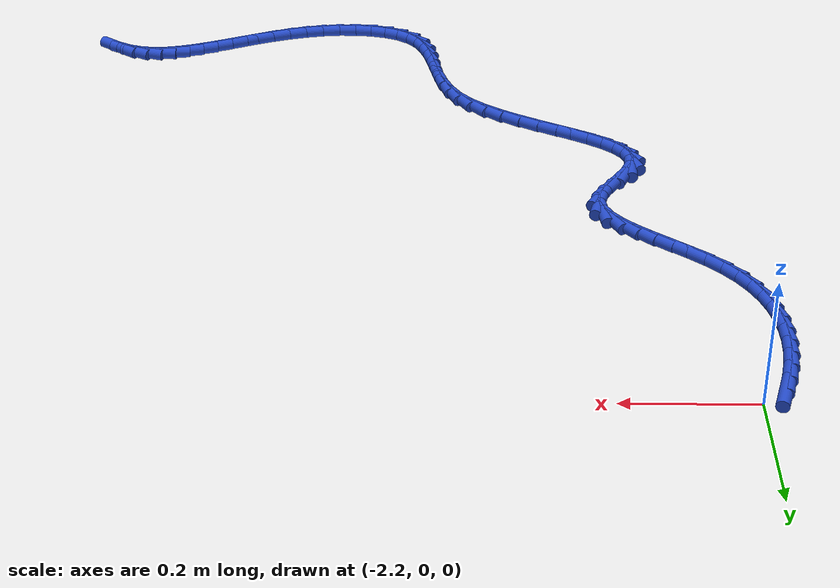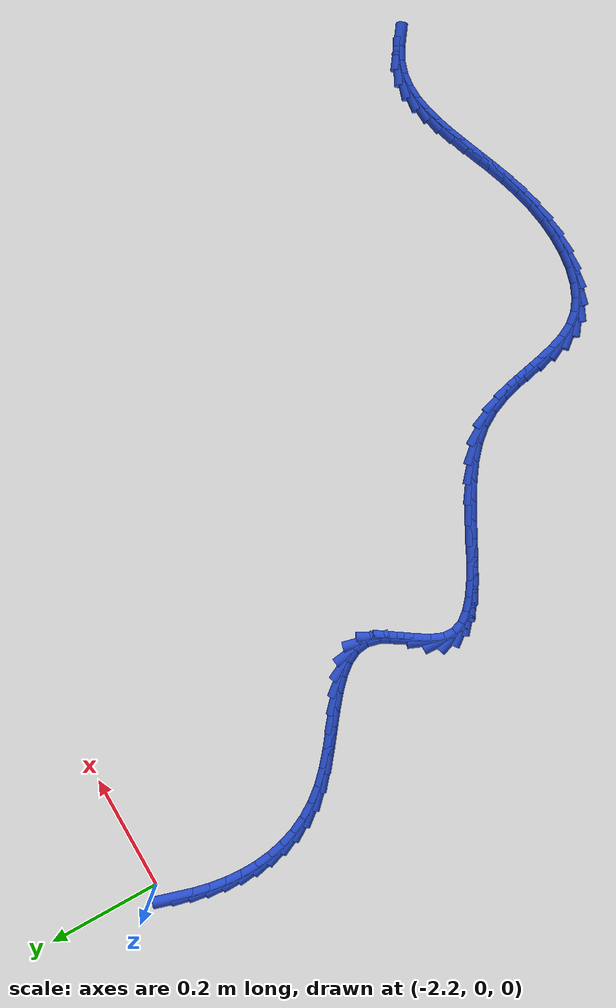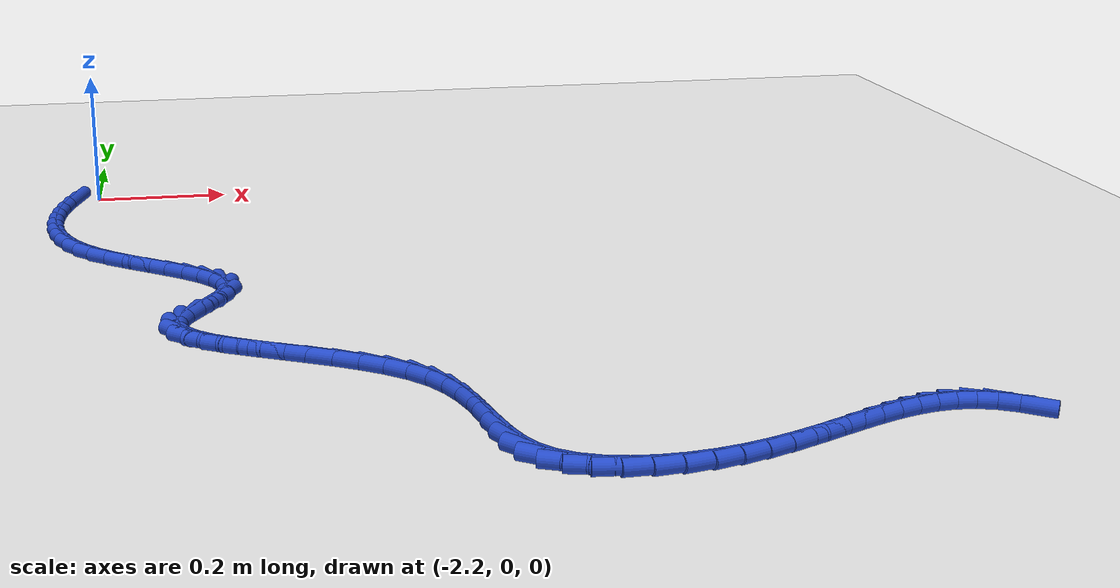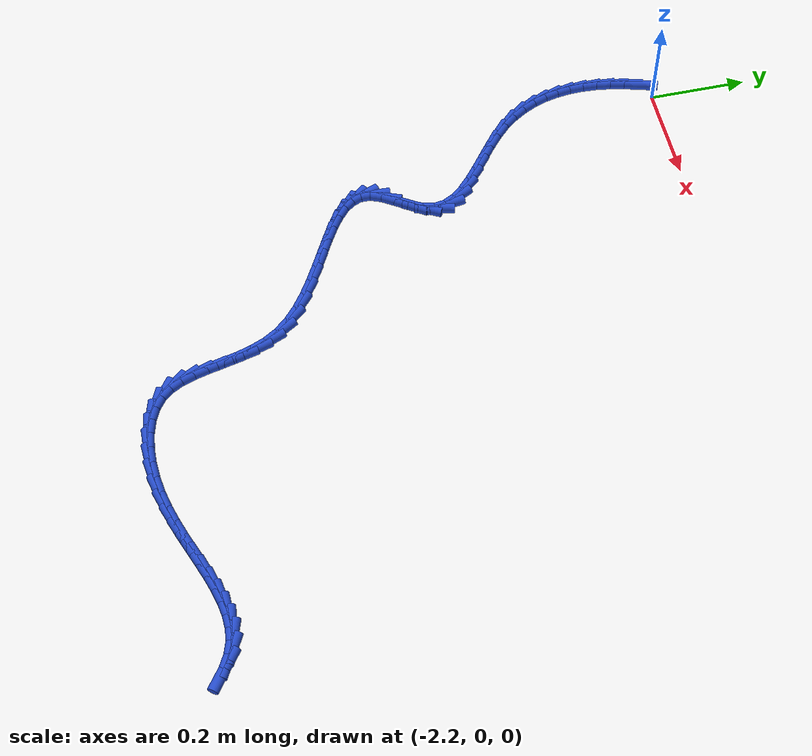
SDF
<sdf version="1.6">
 <world name="default">
  <model name="ground_plane">
   <static>1</static>
   <link name="link">
    <collision name="collision">
     <geometry><plane><normal>0 0 1</normal><size>100 100</size></plane></geometry>
     <surface><friction><ode><mu>100</mu><mu2>50</mu2></ode></friction></surface>
    </collision>
    <visual name="visual">
     <cast_shadows>0</cast_shadows>
     <geometry><plane><normal>0 0 1</normal><size>100 100</size></plane></geometry>
     <material>
      <script><uri>file://media/materials/scripts/gazebo.material</uri><name>Gazebo/WhiteGlow</name></script>
     </material>
    </visual>
   </link>
  </model>
  <model name="line">
   <link name="link_134">
    <pose>-2.2333010467924863 -0.021200513543005825 0.01 0 1.57 1.2876611017947563</pose>
    <collision name="collision">
     <geometry><cylinder><radius>0.01</radius><length>0.08</length></cylinder></geometry>
    </collision>
    <visual name="visual">
     <material>
      <script><name>Gazebo/Blue</name><uri>file://media/materials/scripts/gazebo.material</uri></script>
     </material>
     <geometry><cylinder><radius>0.01</radius><length>0.08</length></cylinder></geometry>
    </visual>
   </link>
   <link name="link_135">
    <pose>-2.241758559506203 -0.05026893901276465 0.01 0 1.57 1.3547154472637721</pose>
    <collision name="collision">
     <geometry><cylinder><radius>0.01</radius><length>0.08</length></cylinder></geometry>
    </collision>
    <visual name="visual">
     <material>
      <script><name>Gazebo/Blue</name><uri>file://media/materials/scripts/gazebo.material</uri></script>
     </material>
     <geometry><cylinder><radius>0.01</radius><length>0.08</length></cylinder></geometry>
    </visual>
   </link>
   <link name="link_136">
    <pose>-2.2481508836966944 -0.07939009611272597 0.01 0 1.57 1.4280907364871451</pose>
    <collision name="collision">
     <geometry><cylinder><radius>0.01</radius><length>0.08</length></cylinder></geometry>
    </collision>
    <visual name="visual">
     <material>
      <script><name>Gazebo/Blue</name><uri>file://media/materials/scripts/gazebo.material</uri></script>
     </material>
     <geometry><cylinder><radius>0.01</radius><length>0.08</length></cylinder></geometry>
    </visual>
   </link>
   <link name="link_137">
    <pose>-2.2523227476389778 -0.10842543779828677 0.01 0 1.57 1.5085349760921503</pose>
    <collision name="collision">
     <geometry><cylinder><radius>0.01</radius><length>0.08</length></cylinder></geometry>
    </collision>
    <visual name="visual">
     <material>
      <script><name>Gazebo/Blue</name><uri>file://media/materials/scripts/gazebo.material</uri></script>
     </material>
     <geometry><cylinder><radius>0.01</radius><length>0.08</length></cylinder></geometry>
    </visual>
   </link>
   <link name="link_138">
    <pose>-2.25411887960807 -0.13723641702484676 0.01 0 1.57 -1.5449700284535788</pose>
    <collision name="collision">
     <geometry><cylinder><radius>0.01</radius><length>0.08</length></cylinder></geometry>
    </collision>
    <visual name="visual">
     <material>
      <script><name>Gazebo/Blue</name><uri>file://media/materials/scripts/gazebo.material</uri></script>
     </material>
     <geometry><cylinder><radius>0.01</radius><length>0.08</length></cylinder></geometry>
    </visual>
   </link>
   <link name="link_139">
    <pose>-2.2533840078789904 -0.1656844867478025 0.01 0 1.57 -1.448985164145226</pose>
    <collision name="collision">
     <geometry><cylinder><radius>0.01</radius><length>0.08</length></cylinder></geometry>
    </collision>
    <visual name="visual">
     <material>
      <script><name>Gazebo/Blue</name><uri>file://media/materials/scripts/gazebo.material</uri></script>
     </material>
     <geometry><cylinder><radius>0.01</radius><length>0.08</length></cylinder></geometry>
    </visual>
   </link>
   <link name="link_140">
    <pose>-2.2499628607267557 -0.19363109992255306 0.01 0 1.57 -1.3453480342210302</pose>
    <collision name="collision">
     <geometry><cylinder><radius>0.01</radius><length>0.08</length></cylinder></geometry>
    </collision>
    <visual name="visual">
     <material>
      <script><name>Gazebo/Blue</name><uri>file://media/materials/scripts/gazebo.material</uri></script>
     </material>
     <geometry><cylinder><radius>0.01</radius><length>0.08</length></cylinder></geometry>
    </visual>
   </link>
   <link name="link_141">
    <pose>-2.2437001664263834 -0.22093770950449726 0.01 0 1.57 -1.2349716382738567</pose>
    <collision name="collision">
     <geometry><cylinder><radius>0.01</radius><length>0.08</length></cylinder></geometry>
    </collision>
    <visual name="visual">
     <material>
      <script><name>Gazebo/Blue</name><uri>file://media/materials/scripts/gazebo.material</uri></script>
     </material>
     <geometry><cylinder><radius>0.01</radius><length>0.08</length></cylinder></geometry>
    </visual>
   </link>
   <link name="link_142">
    <pose>-2.234440653252891 -0.2474657684490317 0.01 0 1.57 -1.119527624433542</pose>
    <collision name="collision">
     <geometry><cylinder><radius>0.01</radius><length>0.08</length></cylinder></geometry>
    </collision>
    <visual name="visual">
     <material>
      <script><name>Gazebo/Blue</name><uri>file://media/materials/scripts/gazebo.material</uri></script>
     </material>
     <geometry><cylinder><radius>0.01</radius><length>0.08</length></cylinder></geometry>
    </visual>
   </link>
   <link name="link_143">
    <pose>-2.2220290494812964 -0.2730767297115561 0.01 0 1.57 -1.0013801900100083</pose>
    <collision name="collision">
     <geometry><cylinder><radius>0.01</radius><length>0.08</length></cylinder></geometry>
    </collision>
    <visual name="visual">
     <material>
      <script><name>Gazebo/Blue</name><uri>file://media/materials/scripts/gazebo.material</uri></script>
     </material>
     <geometry><cylinder><radius>0.01</radius><length>0.08</length></cylinder></geometry>
    </visual>
   </link>
   <link name="link_144">
    <pose>-2.206310083386618 -0.29763204624746714 0.01 0 1.57 -0.883326903998448</pose>
    <collision name="collision">
     <geometry><cylinder><radius>0.01</radius><length>0.08</length></cylinder></geometry>
    </collision>
    <visual name="visual">
     <material>
      <script><name>Gazebo/Blue</name><uri>file://media/materials/scripts/gazebo.material</uri></script>
     </material>
     <geometry><cylinder><radius>0.01</radius><length>0.08</length></cylinder></geometry>
    </visual>
   </link>
   <link name="link_145">
    <pose>-2.187128483243872 -0.3209931710121645 0.01 0 1.57 -0.7724691279451963</pose>
    <collision name="collision">
     <geometry><cylinder><radius>0.01</radius><length>0.08</length></cylinder></geometry>
    </collision>
    <visual name="visual">
     <material>
      <script><name>Gazebo/Blue</name><uri>file://media/materials/scripts/gazebo.material</uri></script>
     </material>
     <geometry><cylinder><radius>0.01</radius><length>0.08</length></cylinder></geometry>
    </visual>
   </link>
   <link name="link_146">
    <pose>-2.164479134887181 -0.3430642945828293 0.01 0 1.57 -0.6955905774156843</pose>
    <collision name="collision">
     <geometry><cylinder><radius>0.01</radius><length>0.08</length></cylinder></geometry>
    </collision>
    <visual name="visual">
     <material>
      <script><name>Gazebo/Blue</name><uri>file://media/materials/scripts/gazebo.material</uri></script>
     </material>
     <geometry><cylinder><radius>0.01</radius><length>0.08</length></cylinder></geometry>
    </visual>
   </link>
   <link name="link_147">
    <pose>-2.1393583095922493 -0.36403462037594714 0.01 0 1.57 -0.6564622899365692</pose>
    <collision name="collision">
     <geometry><cylinder><radius>0.01</radius><length>0.08</length></cylinder></geometry>
    </collision>
    <visual name="visual">
     <material>
      <script><name>Gazebo/Blue</name><uri>file://media/materials/scripts/gazebo.material</uri></script>
     </material>
     <geometry><cylinder><radius>0.01</radius><length>0.08</length></cylinder></geometry>
    </visual>
   </link>
   <link name="link_148">
    <pose>-2.1131719465932868 -0.38420995089480225 0.01 0 1.57 -0.6509606968045747</pose>
    <collision name="collision">
     <geometry><cylinder><radius>0.01</radius><length>0.08</length></cylinder></geometry>
    </collision>
    <visual name="visual">
     <material>
      <script><name>Gazebo/Blue</name><uri>file://media/materials/scripts/gazebo.material</uri></script>
     </material>
     <geometry><cylinder><radius>0.01</radius><length>0.08</length></cylinder></geometry>
    </visual>
   </link>
   <link name="link_149">
    <pose>-2.0873272124886473 -0.4038964379732437 0.01 0 1.57 -0.6804600346426491</pose>
    <collision name="collision">
     <geometry><cylinder><radius>0.01</radius><length>0.08</length></cylinder></geometry>
    </collision>
    <visual name="visual">
     <material>
      <script><name>Gazebo/Blue</name><uri>file://media/materials/scripts/gazebo.material</uri></script>
     </material>
     <geometry><cylinder><radius>0.01</radius><length>0.08</length></cylinder></geometry>
    </visual>
   </link>
   <link name="link_150">
    <pose>-2.0632312738766867 -0.42340023344511846 0.01 0 1.57 -0.7530503090300141</pose>
    <collision name="collision">
     <geometry><cylinder><radius>0.01</radius><length>0.08</length></cylinder></geometry>
    </collision>
    <visual name="visual">
     <material>
      <script><name>Gazebo/Blue</name><uri>file://media/materials/scripts/gazebo.material</uri></script>
     </material>
     <geometry><cylinder><radius>0.01</radius><length>0.08</length></cylinder></geometry>
    </visual>
   </link>
   <link name="link_151">
    <pose>-2.0422912973557588 -0.44302748914427514 0.01 0 1.57 -0.8860626486881282</pose>
    <collision name="collision">
     <geometry><cylinder><radius>0.01</radius><length>0.08</length></cylinder></geometry>
    </collision>
    <visual name="visual">
     <material>
      <script><name>Gazebo/Blue</name><uri>file://media/materials/scripts/gazebo.material</uri></script>
     </material>
     <geometry><cylinder><radius>0.01</radius><length>0.08</length></cylinder></geometry>
    </visual>
   </link>
   <link name="link_152">
    <pose>-2.025914449524218 -0.4630843569045626 0.01 0 1.57 -1.106754935985622</pose>
    <collision name="collision">
     <geometry><cylinder><radius>0.01</radius><length>0.08</length></cylinder></geometry>
    </collision>
    <visual name="visual">
     <material>
      <script><name>Gazebo/Blue</name><uri>file://media/materials/scripts/gazebo.material</uri></script>
     </material>
     <geometry><cylinder><radius>0.01</radius><length>0.08</length></cylinder></geometry>
    </visual>
   </link>
   <link name="link_153">
    <pose>-2.01550789698042 -0.48387698855982764 0.01 0 1.57 -1.4329469118991998</pose>
    <collision name="collision">
     <geometry><cylinder><radius>0.01</radius><length>0.08</length></cylinder></geometry>
    </collision>
    <visual name="visual">
     <material>
      <script><name>Gazebo/Blue</name><uri>file://media/materials/scripts/gazebo.material</uri></script>
     </material>
     <geometry><cylinder><radius>0.01</radius><length>0.08</length></cylinder></geometry>
    </visual>
   </link>
   <link name="link_154">
    <pose>-2.012478806322719 -0.5057115359439195 0.01 0 1.57 1.3303568811636042</pose>
    <collision name="collision">
     <geometry><cylinder><radius>0.01</radius><length>0.08</length></cylinder></geometry>
    </collision>
    <visual name="visual">
     <material>
      <script><name>Gazebo/Blue</name><uri>file://media/materials/scripts/gazebo.material</uri></script>
     </material>
     <geometry><cylinder><radius>0.01</radius><length>0.08</length></cylinder></geometry>
    </visual>
   </link>
   <link name="link_155">
    <pose>-2.0181589845004253 -0.5288786780725527 0.01 0 1.57 1.073680397625172</pose>
    <collision name="collision">
     <geometry><cylinder><radius>0.01</radius><length>0.08</length></cylinder></geometry>
    </collision>
    <visual name="visual">
     <material>
      <script><name>Gazebo/Blue</name><uri>file://media/materials/scripts/gazebo.material</uri></script>
     </material>
     <geometry><cylinder><radius>0.01</radius><length>0.08</length></cylinder></geometry>
    </visual>
   </link>
   <link name="link_156">
    <pose>-2.0313246734668295 -0.5531443862045715 0.01 0 1.57 0.9832884168162731</pose>
    <collision name="collision">
     <geometry><cylinder><radius>0.01</radius><length>0.08</length></cylinder></geometry>
    </collision>
    <visual name="visual">
     <material>
      <script><name>Gazebo/Blue</name><uri>file://media/materials/scripts/gazebo.material</uri></script>
     </material>
     <geometry><cylinder><radius>0.01</radius><length>0.08</length></cylinder></geometry>
    </visual>
   </link>
   <link name="link_157">
    <pose>-2.0476338490776773 -0.5776343902385217 0.01 0 1.57 1.0108201186510835</pose>
    <collision name="collision">
     <geometry><cylinder><radius>0.01</radius><length>0.08</length></cylinder></geometry>
    </collision>
    <visual name="visual">
     <material>
      <script><name>Gazebo/Blue</name><uri>file://media/materials/scripts/gazebo.material</uri></script>
     </material>
     <geometry><cylinder><radius>0.01</radius><length>0.08</length></cylinder></geometry>
    </visual>
   </link>
   <link name="link_158">
    <pose>-2.0625551883462605 -0.6014355532974411 0.01 0 1.57 1.1845032348227698</pose>
    <collision name="collision">
     <geometry><cylinder><radius>0.01</radius><length>0.08</length></cylinder></geometry>
    </collision>
    <visual name="visual">
     <material>
      <script><name>Gazebo/Blue</name><uri>file://media/materials/scripts/gazebo.material</uri></script>
     </material>
     <geometry><cylinder><radius>0.01</radius><length>0.08</length></cylinder></geometry>
    </visual>
   </link>
   <link name="link_159">
    <pose>-2.071586961240989 -0.6236414688173467 0.01 0 1.57 1.5384990069696682</pose>
    <collision name="collision">
     <geometry><cylinder><radius>0.01</radius><length>0.08</length></cylinder></geometry>
    </collision>
    <visual name="visual">
     <material>
      <script><name>Gazebo/Blue</name><uri>file://media/materials/scripts/gazebo.material</uri></script>
     </material>
     <geometry><cylinder><radius>0.01</radius><length>0.08</length></cylinder></geometry>
    </visual>
   </link>
   <link name="link_160">
    <pose>-2.0722383534936157 -0.6438030719364153 0.01 0 1.57 -1.2093703985232973</pose>
    <collision name="collision">
     <geometry><cylinder><radius>0.01</radius><length>0.08</length></cylinder></geometry>
    </collision>
    <visual name="visual">
     <material>
      <script><name>Gazebo/Blue</name><uri>file://media/materials/scripts/gazebo.material</uri></script>
     </material>
     <geometry><cylinder><radius>0.01</radius><length>0.08</length></cylinder></geometry>
    </visual>
   </link>
   <link name="link_161">
    <pose>-2.065278894460966 -0.6622127963330889 0.01 0 1.57 -0.9000656160312671</pose>
    <collision name="collision">
     <geometry><cylinder><radius>0.01</radius><length>0.08</length></cylinder></geometry>
    </collision>
    <visual name="visual">
     <material>
      <script><name>Gazebo/Blue</name><uri>file://media/materials/scripts/gazebo.material</uri></script>
     </material>
     <geometry><cylinder><radius>0.01</radius><length>0.08</length></cylinder></geometry>
    </visual>
   </link>
   <link name="link_162">
    <pose>-2.051776032961039 -0.679230831379985 0.01 0 1.57 -0.700027727535812</pose>
    <collision name="collision">
     <geometry><cylinder><radius>0.01</radius><length>0.08</length></cylinder></geometry>
    </collision>
    <visual name="visual">
     <material>
      <script><name>Gazebo/Blue</name><uri>file://media/materials/scripts/gazebo.material</uri></script>
     </material>
     <geometry><cylinder><radius>0.01</radius><length>0.08</length></cylinder></geometry>
    </visual>
   </link>
   <link name="link_163">
    <pose>-2.0327972178118356 -0.6952173664497245 0.01 0 1.57 -0.5797782949481165</pose>
    <collision name="collision">
     <geometry><cylinder><radius>0.01</radius><length>0.08</length></cylinder></geometry>
    </collision>
    <visual name="visual">
     <material>
      <script><name>Gazebo/Blue</name><uri>file://media/materials/scripts/gazebo.material</uri></script>
     </material>
     <geometry><cylinder><radius>0.01</radius><length>0.08</length></cylinder></geometry>
    </visual>
   </link>
   <link name="link_164">
    <pose>-2.009409897831356 -0.710532590914926 0.01 0 1.57 -0.5115191209317548</pose>
    <collision name="collision">
     <geometry><cylinder><radius>0.01</radius><length>0.08</length></cylinder></geometry>
    </collision>
    <visual name="visual">
     <material>
      <script><name>Gazebo/Blue</name><uri>file://media/materials/scripts/gazebo.material</uri></script>
     </material>
     <geometry><cylinder><radius>0.01</radius><length>0.08</length></cylinder></geometry>
    </visual>
   </link>
   <link name="link_165">
    <pose>-1.982681521837598 -0.7255366941482096 0.01 0 1.57 -0.4787628391784567</pose>
    <collision name="collision">
     <geometry><cylinder><radius>0.01</radius><length>0.08</length></cylinder></geometry>
    </collision>
    <visual name="visual">
     <material>
      <script><name>Gazebo/Blue</name><uri>file://media/materials/scripts/gazebo.material</uri></script>
     </material>
     <geometry><cylinder><radius>0.01</radius><length>0.08</length></cylinder></geometry>
    </visual>
   </link>
   <link name="link_166">
    <pose>-1.9536795386485635 -0.7405898655221939 0.01 0 1.57 -0.47309287863700056</pose>
    <collision name="collision">
     <geometry><cylinder><radius>0.01</radius><length>0.08</length></cylinder></geometry>
    </collision>
    <visual name="visual">
     <material>
      <script><name>Gazebo/Blue</name><uri>file://media/materials/scripts/gazebo.material</uri></script>
     </material>
     <geometry><cylinder><radius>0.01</radius><length>0.08</length></cylinder></geometry>
    </visual>
   </link>
   <link name="link_167">
    <pose>-1.9234713970822508 -0.7560522944094993 0.01 0 1.57 -0.4911594763447392</pose>
    <collision name="collision">
     <geometry><cylinder><radius>0.01</radius><length>0.08</length></cylinder></geometry>
    </collision>
    <visual name="visual">
     <material>
      <script><name>Gazebo/Blue</name><uri>file://media/materials/scripts/gazebo.material</uri></script>
     </material>
     <geometry><cylinder><radius>0.01</radius><length>0.08</length></cylinder></geometry>
    </visual>
   </link>
   <link name="link_168">
    <pose>-1.893124545956661 -0.7722841701827439 0.01 0 1.57 -0.533155790951373</pose>
    <collision name="collision">
     <geometry><cylinder><radius>0.01</radius><length>0.08</length></cylinder></geometry>
    </collision>
    <visual name="visual">
     <material>
      <script><name>Gazebo/Blue</name><uri>file://media/materials/scripts/gazebo.material</uri></script>
     </material>
     <geometry><cylinder><radius>0.01</radius><length>0.08</length></cylinder></geometry>
    </visual>
   </link>
   <link name="link_169">
    <pose>-1.8637064340897922 -0.7896456822145481 0.01 0 1.57 -0.6022567647852997</pose>
    <collision name="collision">
     <geometry><cylinder><radius>0.01</radius><length>0.08</length></cylinder></geometry>
    </collision>
    <visual name="visual">
     <material>
      <script><name>Gazebo/Blue</name><uri>file://media/materials/scripts/gazebo.material</uri></script>
     </material>
     <geometry><cylinder><radius>0.01</radius><length>0.08</length></cylinder></geometry>
    </visual>
   </link>
   <link name="link_170">
    <pose>-1.8362845102996463 -0.8084970198775309 0.01 0 1.57 -0.7044180009083288</pose>
    <collision name="collision">
     <geometry><cylinder><radius>0.01</radius><length>0.08</length></cylinder></geometry>
    </collision>
    <visual name="visual">
     <material>
      <script><name>Gazebo/Blue</name><uri>file://media/materials/scripts/gazebo.material</uri></script>
     </material>
     <geometry><cylinder><radius>0.01</radius><length>0.08</length></cylinder></geometry>
    </visual>
   </link>
   <link name="link_171">
    <pose>-1.811926223404222 -0.8291983725443115 0.01 0 1.57 -0.8475441155079375</pose>
    <collision name="collision">
     <geometry><cylinder><radius>0.01</radius><length>0.08</length></cylinder></geometry>
    </collision>
    <visual name="visual">
     <material>
      <script><name>Gazebo/Blue</name><uri>file://media/materials/scripts/gazebo.material</uri></script>
     </material>
     <geometry><cylinder><radius>0.01</radius><length>0.08</length></cylinder></geometry>
    </visual>
   </link>
   <link name="link_172">
    <pose>-1.7916990222215183 -0.8521099295875105 0.01 0 1.57 -1.0252533397626606</pose>
    <collision name="collision">
     <geometry><cylinder><radius>0.01</radius><length>0.08</length></cylinder></geometry>
    </collision>
    <visual name="visual">
     <material>
      <script><name>Gazebo/Blue</name><uri>file://media/materials/scripts/gazebo.material</uri></script>
     </material>
     <geometry><cylinder><radius>0.01</radius><length>0.08</length></cylinder></geometry>
    </visual>
   </link>
   <link name="link_173">
    <pose>-1.7763356216051185 -0.8774207477852843 0.01 0 1.57 -1.177505290112843</pose>
    <collision name="collision">
     <geometry><cylinder><radius>0.01</radius><length>0.08</length></cylinder></geometry>
    </collision>
    <visual name="visual">
     <material>
      <script><name>Gazebo/Blue</name><uri>file://media/materials/scripts/gazebo.material</uri></script>
     </material>
     <geometry><cylinder><radius>0.01</radius><length>0.08</length></cylinder></geometry>
    </visual>
   </link>
   <link name="link_174">
    <pose>-1.7650765846749181 -0.9045570219876362 0.01 0 1.57 -1.283345946575304</pose>
    <collision name="collision">
     <geometry><cylinder><radius>0.01</radius><length>0.08</length></cylinder></geometry>
    </collision>
    <visual name="visual">
     <material>
      <script><name>Gazebo/Blue</name><uri>file://media/materials/scripts/gazebo.material</uri></script>
     </material>
     <geometry><cylinder><radius>0.01</radius><length>0.08</length></cylinder></geometry>
    </visual>
   </link>
   <link name="link_175">
    <pose>-1.7567468485774853 -0.9327324584455531 0.01 0 1.57 -1.343491907849067</pose>
    <collision name="collision">
     <geometry><cylinder><radius>0.01</radius><length>0.08</length></cylinder></geometry>
    </collision>
    <visual name="visual">
     <material>
      <script><name>Gazebo/Blue</name><uri>file://media/materials/scripts/gazebo.material</uri></script>
     </material>
     <geometry><cylinder><radius>0.01</radius><length>0.08</length></cylinder></geometry>
    </visual>
   </link>
   <link name="link_176">
    <pose>-1.7501713328941089 -0.9611607544297845 0.01 0 1.57 -1.3590550371621462</pose>
    <collision name="collision">
     <geometry><cylinder><radius>0.01</radius><length>0.08</length></cylinder></geometry>
    </collision>
    <visual name="visual">
     <material>
      <script><name>Gazebo/Blue</name><uri>file://media/materials/scripts/gazebo.material</uri></script>
     </material>
     <geometry><cylinder><radius>0.01</radius><length>0.08</length></cylinder></geometry>
    </visual>
   </link>
   <link name="link_177">
    <pose>-1.744174957206078 -0.989055607211076 0.01 0 1.57 -1.327641006506567</pose>
    <collision name="collision">
     <geometry><cylinder><radius>0.01</radius><length>0.08</length></cylinder></geometry>
    </collision>
    <visual name="visual">
     <material>
      <script><name>Gazebo/Blue</name><uri>file://media/materials/scripts/gazebo.material</uri></script>
     </material>
     <geometry><cylinder><radius>0.01</radius><length>0.08</length></cylinder></geometry>
    </visual>
   </link>
   <link name="link_178">
    <pose>-1.7375826410946806 -1.0156307140601764 0.01 0 1.57 -1.241452072351488</pose>
    <collision name="collision">
     <geometry><cylinder><radius>0.01</radius><length>0.08</length></cylinder></geometry>
    </collision>
    <visual name="visual">
     <material>
      <script><name>Gazebo/Blue</name><uri>file://media/materials/scripts/gazebo.material</uri></script>
     </material>
     <geometry><cylinder><radius>0.01</radius><length>0.08</length></cylinder></geometry>
    </visual>
   </link>
   <link name="link_179">
    <pose>-1.729219304141206 -1.0400997722478313 0.01 0 1.57 -1.0880156312383686</pose>
    <collision name="collision">
     <geometry><cylinder><radius>0.01</radius><length>0.08</length></cylinder></geometry>
    </collision>
    <visual name="visual">
     <material>
      <script><name>Gazebo/Blue</name><uri>file://media/materials/scripts/gazebo.material</uri></script>
     </material>
     <geometry><cylinder><radius>0.01</radius><length>0.08</length></cylinder></geometry>
    </visual>
   </link>
   <link name="link_180">
    <pose>-1.7179098659269416 -1.0616764790447895 0.01 0 1.57 -0.8597965756190754</pose>
    <collision name="collision">
     <geometry><cylinder><radius>0.01</radius><length>0.08</length></cylinder></geometry>
    </collision>
    <visual name="visual">
     <material>
      <script><name>Gazebo/Blue</name><uri>file://media/materials/scripts/gazebo.material</uri></script>
     </material>
     <geometry><cylinder><radius>0.01</radius><length>0.08</length></cylinder></geometry>
    </visual>
   </link>
   <link name="link_181">
    <pose>-1.7024900123200983 -1.0795801331190231 0.01 0 1.57 -0.6051318146917436</pose>
    <collision name="collision">
     <geometry><cylinder><radius>0.01</radius><length>0.08</length></cylinder></geometry>
    </collision>
    <visual name="visual">
     <material>
      <script><name>Gazebo/Blue</name><uri>file://media/materials/scripts/gazebo.material</uri></script>
     </material>
     <geometry><cylinder><radius>0.01</radius><length>0.08</length></cylinder></geometry>
    </visual>
   </link>
   <link name="link_182">
    <pose>-1.6825087180133942 -1.0934011373150967 0.01 0 1.57 -0.3943821795146243</pose>
    <collision name="collision">
     <geometry><cylinder><radius>0.01</radius><length>0.08</length></cylinder></geometry>
    </collision>
    <visual name="visual">
     <material>
      <script><name>Gazebo/Blue</name><uri>file://media/materials/scripts/gazebo.material</uri></script>
     </material>
     <geometry><cylinder><radius>0.01</radius><length>0.08</length></cylinder></geometry>
    </visual>
   </link>
   <link name="link_183">
    <pose>-1.6586611013242898 -1.1033262008705818 0.01 0 1.57 -0.22885948423597846</pose>
    <collision name="collision">
     <geometry><cylinder><radius>0.01</radius><length>0.08</length></cylinder></geometry>
    </collision>
    <visual name="visual">
     <material>
      <script><name>Gazebo/Blue</name><uri>file://media/materials/scripts/gazebo.material</uri></script>
     </material>
     <geometry><cylinder><radius>0.01</radius><length>0.08</length></cylinder></geometry>
    </visual>
   </link>
   <link name="link_184">
    <pose>-1.6317457696282462 -1.1095958754783555 0.01 0 1.57 -0.09751030002772232</pose>
    <collision name="collision">
     <geometry><cylinder><radius>0.01</radius><length>0.08</length></cylinder></geometry>
    </collision>
    <visual name="visual">
     <material>
      <script><name>Gazebo/Blue</name><uri>file://media/materials/scripts/gazebo.material</uri></script>
     </material>
     <geometry><cylinder><radius>0.01</radius><length>0.08</length></cylinder></geometry>
    </visual>
   </link>
   <link name="link_185">
    <pose>-1.6025613303007225 -1.1124507128312977 0.01 0 1.57 0.010420397197782906</pose>
    <collision name="collision">
     <geometry><cylinder><radius>0.01</radius><length>0.08</length></cylinder></geometry>
    </collision>
    <visual name="visual">
     <material>
      <script><name>Gazebo/Blue</name><uri>file://media/materials/scripts/gazebo.material</uri></script>
     </material>
     <geometry><cylinder><radius>0.01</radius><length>0.08</length></cylinder></geometry>
    </visual>
   </link>
   <link name="link_186">
    <pose>-1.57190639071718 -1.1121312646222858 0.01 0 1.57 0.10347560547830856</pose>
    <collision name="collision">
     <geometry><cylinder><radius>0.01</radius><length>0.08</length></cylinder></geometry>
    </collision>
    <visual name="visual">
     <material>
      <script><name>Gazebo/Blue</name><uri>file://media/materials/scripts/gazebo.material</uri></script>
     </material>
     <geometry><cylinder><radius>0.01</radius><length>0.08</length></cylinder></geometry>
    </visual>
   </link>
   <link name="link_187">
    <pose>-1.5405795582530775 -1.1088780825441995 0.01 0 1.57 0.1883115052474604</pose>
    <collision name="collision">
     <geometry><cylinder><radius>0.01</radius><length>0.08</length></cylinder></geometry>
    </collision>
    <visual name="visual">
     <material>
      <script><name>Gazebo/Blue</name><uri>file://media/materials/scripts/gazebo.material</uri></script>
     </material>
     <geometry><cylinder><radius>0.01</radius><length>0.08</length></cylinder></geometry>
    </visual>
   </link>
   <link name="link_188">
    <pose>-1.5093785767686905 -1.102932128434805 0.01 0 1.57 0.2655026775115092</pose>
    <collision name="collision">
     <geometry><cylinder><radius>0.01</radius><length>0.08</length></cylinder></geometry>
    </collision>
    <visual name="visual">
     <material>
      <script><name>Gazebo/Blue</name><uri>file://media/materials/scripts/gazebo.material</uri></script>
     </material>
     <geometry><cylinder><radius>0.01</radius><length>0.08</length></cylinder></geometry>
    </visual>
   </link>
   <link name="link_189">
    <pose>-1.478880721139422 -1.0946390805617296 0.01 0 1.57 0.32603487668906234</pose>
    <collision name="collision">
     <geometry><cylinder><radius>0.01</radius><length>0.08</length></cylinder></geometry>
    </collision>
    <visual name="visual">
     <material>
      <script><name>Gazebo/Blue</name><uri>file://media/materials/scripts/gazebo.material</uri></script>
     </material>
     <geometry><cylinder><radius>0.01</radius><length>0.08</length></cylinder></geometry>
    </visual>
   </link>
   <link name="link_190">
    <pose>-1.4491515938015058 -1.0845876468918498 0.01 0 1.57 0.3685411285785922</pose>
    <collision name="collision">
     <geometry><cylinder><radius>0.01</radius><length>0.08</length></cylinder></geometry>
    </collision>
    <visual name="visual">
     <material>
      <script><name>Gazebo/Blue</name><uri>file://media/materials/scripts/gazebo.material</uri></script>
     </material>
     <geometry><cylinder><radius>0.01</radius><length>0.08</length></cylinder></geometry>
    </visual>
   </link>
   <link name="link_191">
    <pose>-1.4201843919770218 -1.073400925787288 0.01 0 1.57 0.3930948837495656</pose>
    <collision name="collision">
     <geometry><cylinder><radius>0.01</radius><length>0.08</length></cylinder></geometry>
    </collision>
    <visual name="visual">
     <material>
      <script><name>Gazebo/Blue</name><uri>file://media/materials/scripts/gazebo.material</uri></script>
     </material>
     <geometry><cylinder><radius>0.01</radius><length>0.08</length></cylinder></geometry>
    </visual>
   </link>
   <link name="link_192">
    <pose>-1.3919723128880548 -1.0617020156101666 0.01 0 1.57 0.3992741659693564</pose>
    <collision name="collision">
     <geometry><cylinder><radius>0.01</radius><length>0.08</length></cylinder></geometry>
    </collision>
    <visual name="visual">
     <material>
      <script><name>Gazebo/Blue</name><uri>file://media/materials/scripts/gazebo.material</uri></script>
     </material>
     <geometry><cylinder><radius>0.01</radius><length>0.08</length></cylinder></geometry>
    </visual>
   </link>
   <link name="link_193">
    <pose>-1.3645085537566854 -1.050114014722608 0.01 0 1.57 0.3858210743540391</pose>
    <collision name="collision">
     <geometry><cylinder><radius>0.01</radius><length>0.08</length></cylinder></geometry>
    </collision>
    <visual name="visual">
     <material>
      <script><name>Gazebo/Blue</name><uri>file://media/materials/scripts/gazebo.material</uri></script>
     </material>
     <geometry><cylinder><radius>0.01</radius><length>0.08</length></cylinder></geometry>
    </visual>
   </link>
   <link name="link_194">
    <pose>-1.3377863118049949 -1.0392600214867336 0.01 0 1.57 0.35036324766879084</pose>
    <collision name="collision">
     <geometry><cylinder><radius>0.01</radius><length>0.08</length></cylinder></geometry>
    </collision>
    <visual name="visual">
     <material>
      <script><name>Gazebo/Blue</name><uri>file://media/materials/scripts/gazebo.material</uri></script>
     </material>
     <geometry><cylinder><radius>0.01</radius><length>0.08</length></cylinder></geometry>
    </visual>
   </link>
   <link name="link_195">
    <pose>-1.311798784255066 -1.0297631342646663 0.01 0 1.57 0.28923245596194364</pose>
    <collision name="collision">
     <geometry><cylinder><radius>0.01</radius><length>0.08</length></cylinder></geometry>
    </collision>
    <visual name="visual">
     <material>
      <script><name>Gazebo/Blue</name><uri>file://media/materials/scripts/gazebo.material</uri></script>
     </material>
     <geometry><cylinder><radius>0.01</radius><length>0.08</length></cylinder></geometry>
    </visual>
   </link>
   <link name="link_196">
    <pose>-1.2865391683289804 -1.0222464514185283 0.01 0 1.57 0.19761806881187619</pose>
    <collision name="collision">
     <geometry><cylinder><radius>0.01</radius><length>0.08</length></cylinder></geometry>
    </collision>
    <visual name="visual">
     <material>
      <script><name>Gazebo/Blue</name><uri>file://media/materials/scripts/gazebo.material</uri></script>
     </material>
     <geometry><cylinder><radius>0.01</radius><length>0.08</length></cylinder></geometry>
    </visual>
   </link>
   <link name="link_197">
    <pose>-1.2620006612488208 -1.0173330713104418 0.01 0 1.57 0.07069147735397725</pose>
    <collision name="collision">
     <geometry><cylinder><radius>0.01</radius><length>0.08</length></cylinder></geometry>
    </collision>
    <visual name="visual">
     <material>
      <script><name>Gazebo/Blue</name><uri>file://media/materials/scripts/gazebo.material</uri></script>
     </material>
     <geometry><cylinder><radius>0.01</radius><length>0.08</length></cylinder></geometry>
    </visual>
   </link>
   <link name="link_198">
    <pose>-1.238176460236668 -1.0156460923025286 0.01 0 1.57 -0.09327652085231045</pose>
    <collision name="collision">
     <geometry><cylinder><radius>0.01</radius><length>0.08</length></cylinder></geometry>
    </collision>
    <visual name="visual">
     <material>
      <script><name>Gazebo/Blue</name><uri>file://media/materials/scripts/gazebo.material</uri></script>
     </material>
     <geometry><cylinder><radius>0.01</radius><length>0.08</length></cylinder></geometry>
    </visual>
   </link>
   <link name="link_199">
    <pose>-1.2150597625146053 -1.0178086127569115 0.01 0 1.57 -0.28775631044712613</pose>
    <collision name="collision">
     <geometry><cylinder><radius>0.01</radius><length>0.08</length></cylinder></geometry>
    </collision>
    <visual name="visual">
     <material>
      <script><name>Gazebo/Blue</name><uri>file://media/materials/scripts/gazebo.material</uri></script>
     </material>
     <geometry><cylinder><radius>0.01</radius><length>0.08</length></cylinder></geometry>
    </visual>
   </link>
   <link name="link_200">
    <pose>-1.1926437078396954 -1.0244431132358556 0.01 0 1.57 -0.4807691054838296</pose>
    <collision name="collision">
     <geometry><cylinder><radius>0.01</radius><length>0.08</length></cylinder></geometry>
    </collision>
    <visual name="visual">
     <material>
      <script><name>Gazebo/Blue</name><uri>file://media/materials/scripts/gazebo.material</uri></script>
     </material>
     <geometry><cylinder><radius>0.01</radius><length>0.08</length></cylinder></geometry>
    </visual>
   </link>
   <link name="link_201">
    <pose>-1.1708860517759252 -1.035791662875733 0.01 0 1.57 -0.623609286250905</pose>
    <collision name="collision">
     <geometry><cylinder><radius>0.01</radius><length>0.08</length></cylinder></geometry>
    </collision>
    <visual name="visual">
     <material>
      <script><name>Gazebo/Blue</name><uri>file://media/materials/scripts/gazebo.material</uri></script>
     </material>
     <geometry><cylinder><radius>0.01</radius><length>0.08</length></cylinder></geometry>
    </visual>
   </link>
  </model>
 </world>
</sdf>
